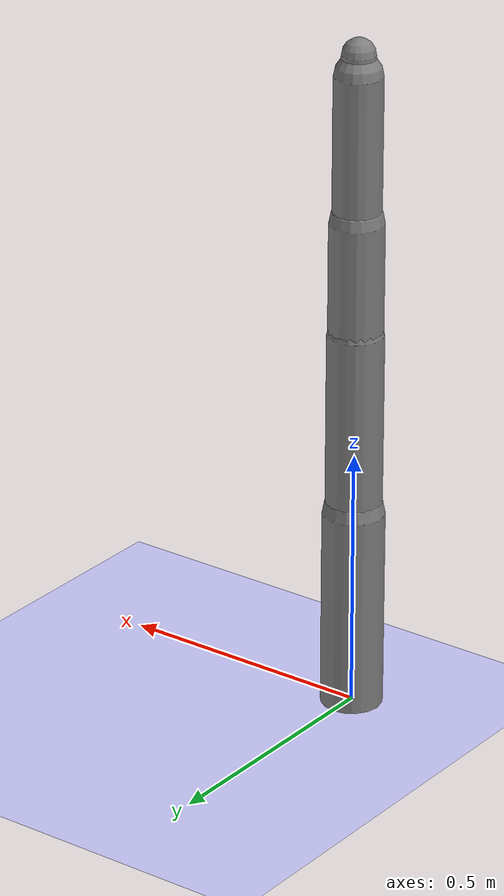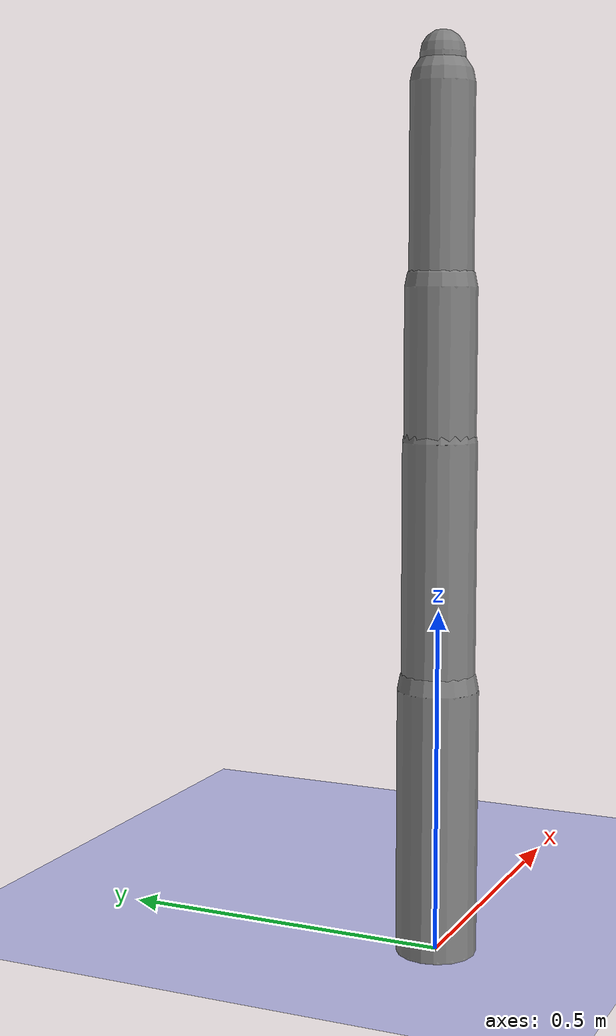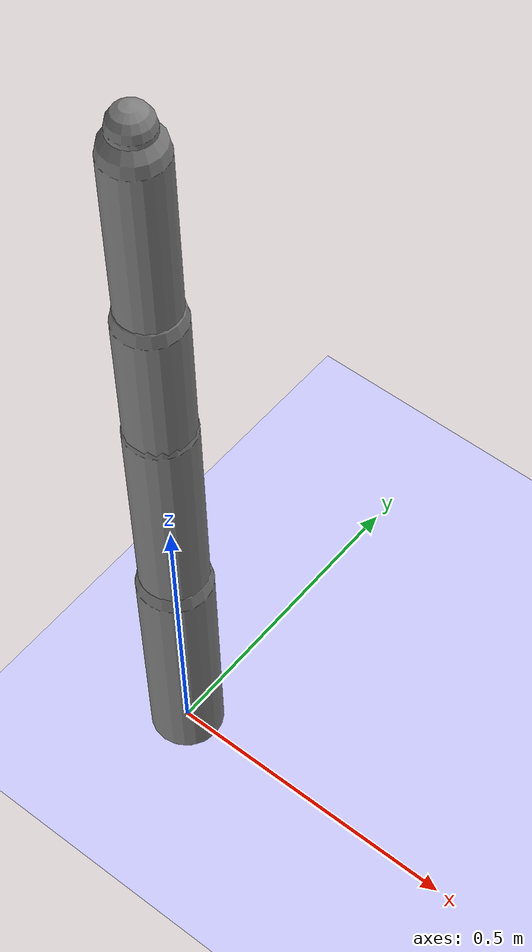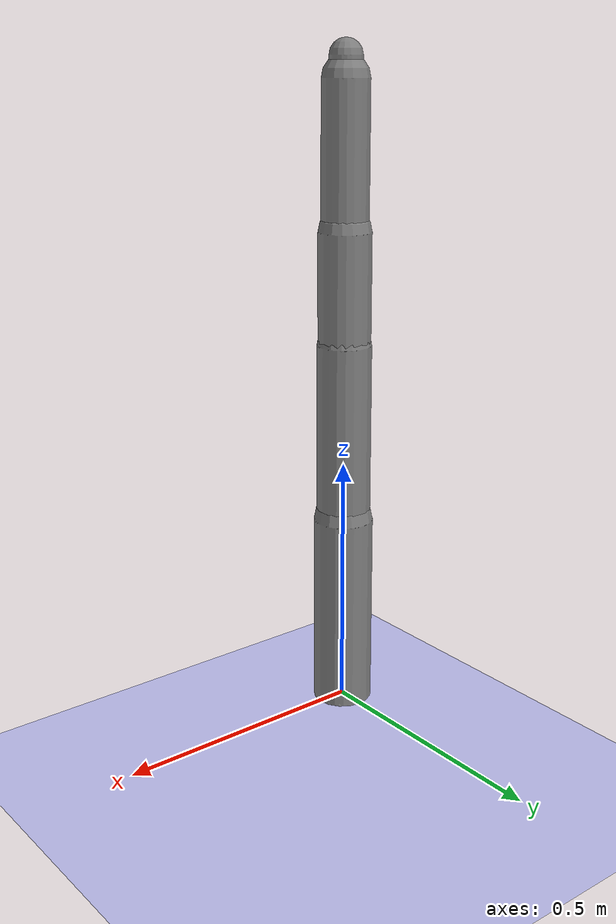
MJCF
<?xml version='1.0' encoding='UTF-8'?>
<mujoco model="robot_model">
  <worldbody>
    <light name="light" pos="0 -3 10" dir="0 0.5 -1" diffuse=".8 .8 .8" specular="0.1 0.1 0.1"/>
    <geom name="floor" type="plane" size="10.0 10.0 0.1" pos="0 0 0" rgba="0.8 0.8 1 1" contype="2" conaffinity="1"/>
    <body name="limb0" pos="0 0 0">
      <geom type="capsule" fromto="0 0 0 0 0 0.3873882168320604" size="0.05851527275539045" density="855.2501849918699" contype="1" conaffinity="2"/>
      <site type="sphere" size="0.01" name="limb0_site0" pos="0 0 0.37011576869851015"/>
      <site type="sphere" size="0.01" name="limb0_site1" pos="0 0 0.18437543453853222"/>
      <freejoint name="limb0_root"/>
      <body name="limb1" pos="0 0 0.37011576869851015">
        <geom type="capsule" fromto="0 0 0 0 0 0.372274530228085" size="0.052960072305996767" density="1069.5549891432568" contype="1" conaffinity="2"/>
        <site type="sphere" size="0.01" name="limb1_site0" pos="0 0 0.3650181458444618"/>
        <site type="sphere" size="0.01" name="limb1_site1" pos="0 0 0.13266544409228273"/>
        <body name="limb2" pos="0 0 0.3650181458444618">
          <geom type="capsule" fromto="0 0 0 0 0 0.5" size="0.045329815490319995" density="1017.2531489540214" contype="1" conaffinity="2"/>
          <site type="sphere" size="0.01" name="limb2_site0" pos="0 0 0.34785567640622883"/>
          <body name="limb3" pos="0 0 0.34785567640622883">
            <geom type="capsule" fromto="0 0 0 0 0 0.19166066799868264" size="0.0314707546179414" density="956.2416848734547" contype="1" conaffinity="2"/>
            <joint name="joint_limb2_limb3_0" type="hinge" axis="0 1 0" range="-39.54825129765963 39.54825129765963" damping="5.0"/>
          </body>
          <joint name="joint_limb1_limb2_0" type="hinge" axis="0 1 0" range="-60.504894728636025 60.504894728636025" damping="5.0"/>
        </body>
        <body name="limb4" pos="0 0 0.13266544409228273">
          <geom type="capsule" fromto="0 0 0 0 0 0.4553959547646001" size="0.05112992904407712" density="905.1932138092933" contype="1" conaffinity="2"/>
          <joint name="joint_limb1_limb4_0" type="hinge" axis="0 0 1" range="-72.8282440056993 72.8282440056993" damping="5.0"/>
        </body>
        <joint name="joint_limb0_limb1_0" type="hinge" axis="0 1 0" range="-89.12714794406047 89.12714794406047" damping="5.0"/>
      </body>
      <body name="limb5" pos="0 0 0.18437543453853222">
        <geom type="capsule" fromto="0 0 0 0 0 0.43647014061798706" size="0.041248644928393044" density="789.216346642524" contype="1" conaffinity="2"/>
        <site type="sphere" size="0.01" name="limb5_site0" pos="0 0 0.3678912593167582"/>
        <body name="limb6" pos="0 0 0.3678912593167582">
          <geom type="capsule" fromto="0 0 0 0 0 0.47262763508255246" size="0.020529935239340557" density="656.832315651605" contype="1" conaffinity="2"/>
          <joint name="joint_limb5_limb6_0" type="hinge" axis="0 1 0" range="-106.5217187101344 106.5217187101344" damping="5.0"/>
        </body>
        <joint name="joint_limb0_limb5_0" type="hinge" axis="0 0 1" range="-45.82744000775369 45.82744000775369" damping="5.0"/>
      </body>
    </body>
  </worldbody>
  <actuator>
    <position name="position_actuator_joint_limb0_limb1_0" joint="joint_limb0_limb1_0" gear="1.8694611590103172" inheritrange="1" forcerange="-20.869594355142794 20.869594355142794" forcelimited="true" kp="100.0"/>
    <position name="position_actuator_joint_limb1_limb2_0" joint="joint_limb1_limb2_0" gear="1.855224638398584" inheritrange="1" forcerange="-18.401183504925072 18.401183504925072" forcelimited="true" kp="100.0"/>
    <position name="position_actuator_joint_limb2_limb3_0" joint="joint_limb2_limb3_0" gear="1.9577561249166682" inheritrange="1" forcerange="-3.4754816031092273 3.4754816031092273" forcelimited="true" kp="100.0"/>
    <position name="position_actuator_joint_limb1_limb4_0" joint="joint_limb1_limb4_0" gear="0.8397505935235454" inheritrange="1" forcerange="-19.46191769120985 19.46191769120985" forcelimited="true" kp="100.0"/>
    <position name="position_actuator_joint_limb0_limb5_0" joint="joint_limb0_limb5_0" gear="0.7342032220860385" inheritrange="1" forcerange="-10.36646920093445 10.36646920093445" forcelimited="true" kp="100.0"/>
    <position name="position_actuator_joint_limb5_limb6_0" joint="joint_limb5_limb6_0" gear="1.6503793446698956" inheritrange="1" forcerange="-2.17430426597321 2.17430426597321" forcelimited="true" kp="100.0"/>
  </actuator>
</mujoco>
